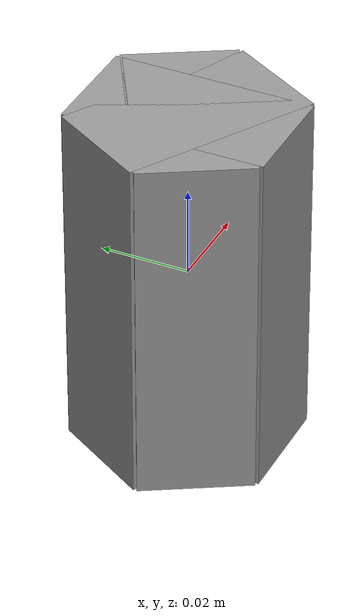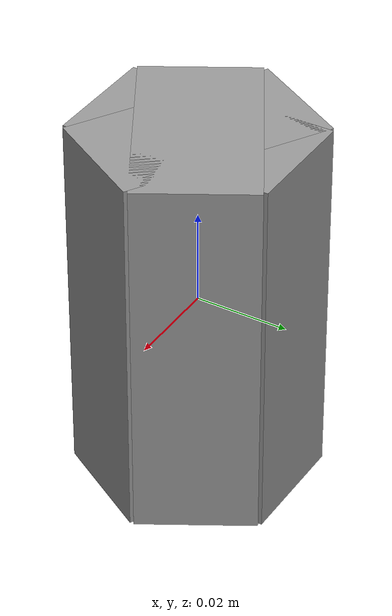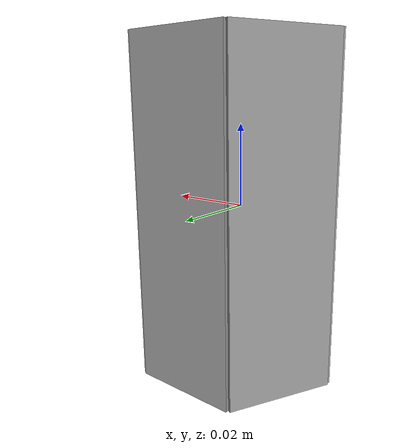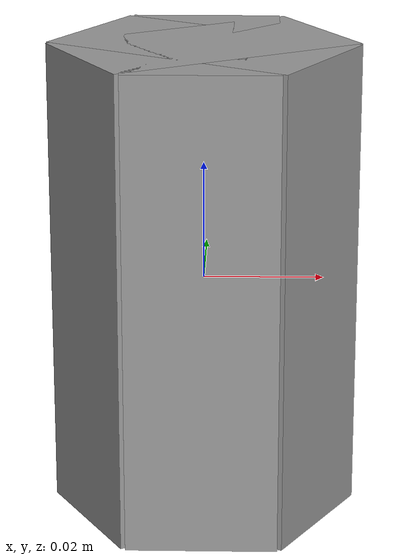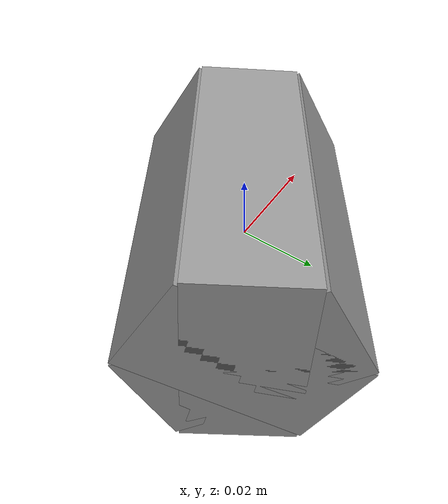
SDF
<?xml version='1.0'?>
<sdf version='1.6'>
  <model name='bolt'>
    <link name='link'>
      <inertial>
        <mass>0.1</mass>
        <inertia>
          <ixx>0.0001</ixx> <ixy>0</ixy> <ixz>0</ixz>
          <iyy>0.0001</iyy> <iyz>0</iyz>
          <izz>0.0002</izz>
        </inertia>
      </inertial>

      <visual name='box1_vis'>
        <geometry><box><size>0.025 0.045 0.08</size></box></geometry>
        <material><script><name>Gazebo/Grey</name></script></material>
      </visual>
      <collision name='box1_col'>
        <geometry><box><size>0.025 0.045 0.08</size></box></geometry>
        <surface><friction><ode><mu>100.0</mu><mu2>100.0</mu2></ode></friction></surface>
      </collision>

      <visual name='box2_vis'>
        <pose>0 0 0 0 0 1.047</pose>
        <geometry><box><size>0.025 0.045 0.08</size></box></geometry>
        <material><script><name>Gazebo/Grey</name></script></material>
      </visual>
      <collision name='box2_col'>
        <pose>0 0 0 0 0 1.047</pose>
        <geometry><box><size>0.025 0.045 0.08</size></box></geometry>
        <surface><friction><ode><mu>100.0</mu><mu2>100.0</mu2></ode></friction></surface>
      </collision>

      <visual name='box3_vis'>
        <pose>0 0 0 0 0 2.094</pose>
        <geometry><box><size>0.025 0.045 0.08</size></box></geometry>
        <material><script><name>Gazebo/Grey</name></script></material>
      </visual>
      <collision name='box3_col'>
        <pose>0 0 0 0 0 2.094</pose>
        <geometry><box><size>0.025 0.045 0.08</size></box></geometry>
        <surface><friction><ode><mu>100.0</mu><mu2>100.0</mu2></ode></friction></surface>
      </collision>
    </link>
  </model>
</sdf>
